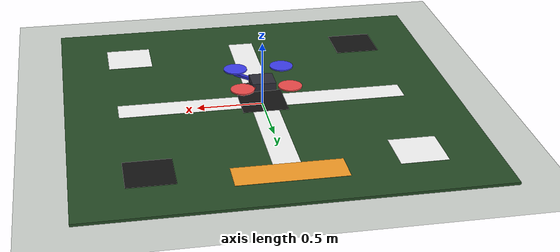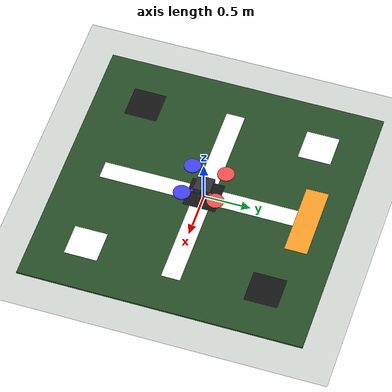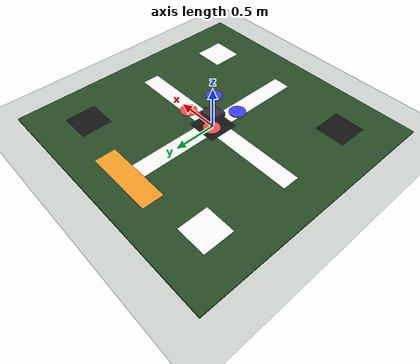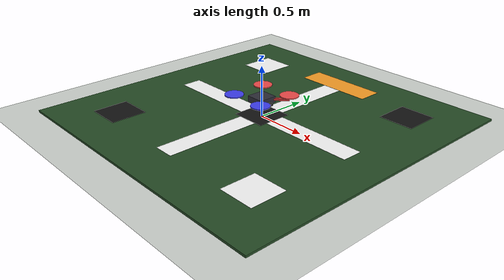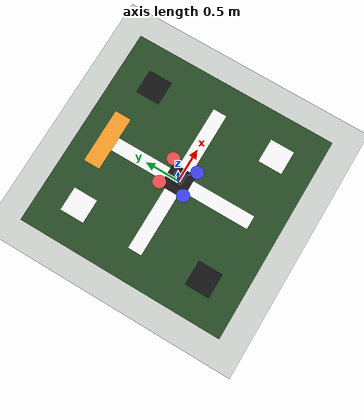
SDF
<?xml version="1.0"?>
<sdf version="1.9">
  <world name="empty_world">
    <gravity>0 0 -9.81</gravity>
    <magnetic_field>6.0e-06 2.3e-05 -4.2e-05</magnetic_field>
    <atmosphere type="adiabatic"/>

    <physics name="physics" type="ode">
      <max_step_size>0.004</max_step_size>
      <real_time_factor>1.0</real_time_factor>
      <real_time_update_rate>250</real_time_update_rate>
    </physics>

    <plugin filename="gz-sim8-physics-system" name="gz::sim::systems::Physics"/>
    <plugin filename="gz-sim8-user-commands-system" name="gz::sim::systems::UserCommands"/>
    <plugin filename="gz-sim8-scene-broadcaster-system" name="gz::sim::systems::SceneBroadcaster"/>
    <plugin filename="gz-sim8-sensors-system" name="gz::sim::systems::Sensors">
      <render_engine>ogre2</render_engine>
    </plugin>
    <plugin filename="gz-sim8-imu-system" name="gz::sim::systems::Imu"/>
    <plugin filename="gz-sim8-air-pressure-system" name="gz::sim::systems::AirPressure"/>

    <scene>
      <ambient>0.7 0.7 0.7 1</ambient>
      <background>0.9 0.9 0.95 1</background>
      <shadows>false</shadows>
      <grid>true</grid>
    </scene>

    <light type="directional" name="sun">
      <cast_shadows>false</cast_shadows>
      <pose>0 0 10 0 0 0</pose>
      <diffuse>1 1 1 1</diffuse>
      <specular>0.2 0.2 0.2 1</specular>
      <direction>-0.4 0.2 -1</direction>
    </light>

    <model name="ground_plane">
      <static>true</static>
      <link name="link">
        <collision name="collision">
          <geometry>
            <plane>
              <normal>0 0 1</normal>
              <size>100 100</size>
            </plane>
          </geometry>
        </collision>
        <visual name="visual">
          <geometry>
            <plane>
              <normal>0 0 1</normal>
              <size>100 100</size>
            </plane>
          </geometry>
          <material>
            <ambient>0.78 0.8 0.78 1</ambient>
            <diffuse>0.82 0.84 0.82 1</diffuse>
          </material>
        </visual>
      </link>
    </model>

    <model name="landing_pad">
      <static>true</static>
      <link name="link">
        <collision name="collision">
          <geometry>
            <box>
              <size>3 3 0.02</size>
            </box>
          </geometry>
        </collision>
        <visual name="visual">
          <geometry>
            <box>
              <size>3 3 0.02</size>
            </box>
          </geometry>
          <material>
            <ambient>0.12 0.2 0.12 1</ambient>
            <diffuse>0.15 0.3 0.15 1</diffuse>
          </material>
        </visual>
        <visual name="center_cross_long">
          <pose>0 0 0.011 0 0 0</pose>
          <geometry>
            <box>
              <size>2.2 0.2 0.002</size>
            </box>
          </geometry>
          <material>
            <ambient>0.96 0.96 0.96 1</ambient>
            <diffuse>0.99 0.99 0.99 1</diffuse>
          </material>
        </visual>
        <visual name="center_cross_wide">
          <pose>0 0 0.011 0 0 0</pose>
          <geometry>
            <box>
              <size>0.2 2.2 0.002</size>
            </box>
          </geometry>
          <material>
            <ambient>0.96 0.96 0.96 1</ambient>
            <diffuse>0.99 0.99 0.99 1</diffuse>
          </material>
        </visual>
        <visual name="center_marker">
          <pose>0 0 0.012 0 0 0</pose>
          <geometry>
            <box>
              <size>0.35 0.35 0.002</size>
            </box>
          </geometry>
          <material>
            <ambient>0.06 0.06 0.06 1</ambient>
            <diffuse>0.08 0.08 0.08 1</diffuse>
          </material>
        </visual>
        <visual name="north_marker">
          <pose>0 1.1 0.012 0 0 0</pose>
          <geometry>
            <box>
              <size>0.8 0.24 0.002</size>
            </box>
          </geometry>
          <material>
            <ambient>0.95 0.55 0.12 1</ambient>
            <diffuse>0.98 0.62 0.15 1</diffuse>
          </material>
        </visual>
        <visual name="southwest_marker">
          <pose>-0.95 -0.95 0.012 0 0 0</pose>
          <geometry>
            <box>
              <size>0.35 0.35 0.002</size>
            </box>
          </geometry>
          <material>
            <ambient>0.06 0.06 0.06 1</ambient>
            <diffuse>0.08 0.08 0.08 1</diffuse>
          </material>
        </visual>
        <visual name="southeast_marker">
          <pose>0.95 -0.95 0.012 0 0 0</pose>
          <geometry>
            <box>
              <size>0.35 0.35 0.002</size>
            </box>
          </geometry>
          <material>
            <ambient>0.96 0.96 0.96 1</ambient>
            <diffuse>0.99 0.99 0.99 1</diffuse>
          </material>
        </visual>
        <visual name="northwest_marker">
          <pose>-0.95 0.95 0.012 0 0 0</pose>
          <geometry>
            <box>
              <size>0.35 0.35 0.002</size>
            </box>
          </geometry>
          <material>
            <ambient>0.96 0.96 0.96 1</ambient>
            <diffuse>0.99 0.99 0.99 1</diffuse>
          </material>
        </visual>
        <visual name="northeast_marker">
          <pose>0.95 0.95 0.012 0 0 0</pose>
          <geometry>
            <box>
              <size>0.35 0.35 0.002</size>
            </box>
          </geometry>
          <material>
            <ambient>0.06 0.06 0.06 1</ambient>
            <diffuse>0.08 0.08 0.08 1</diffuse>
          </material>
        </visual>
      </link>
      <pose>0 0 0.01 0 0 0</pose>
    </model>

    <include>
      <uri>model://quadcopter</uri>
      <name>quadcopter</name>
      <pose>0 0 0.18 0 0 0</pose>
    </include>
  </world>
</sdf>

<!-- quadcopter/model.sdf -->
<sdf version="1.9">
  <model name="quadcopter">
    <static>false</static>
    <pose>0 0 0.18 0 0 0</pose>

    <link name="base_link">
      <pose>0 0 0 0 0 0</pose>
      <inertial>
        <mass>1.0</mass>
        <inertia>
          <ixx>0.021</ixx>
          <iyy>0.021</iyy>
          <izz>0.038</izz>
          <ixy>0.0</ixy>
          <ixz>0.0</ixz>
          <iyz>0.0</iyz>
        </inertia>
      </inertial>

      <collision name="body_collision">
        <geometry>
          <box>
            <size>0.18 0.18 0.06</size>
          </box>
        </geometry>
      </collision>

      <visual name="body_visual">
        <geometry>
          <box>
            <size>0.18 0.18 0.06</size>
          </box>
        </geometry>
        <material>
          <ambient>0.15 0.15 0.18 1</ambient>
          <diffuse>0.18 0.18 0.22 1</diffuse>
          <specular>0.05 0.05 0.05 1</specular>
        </material>
      </visual>

      <visual name="arm_front_left">
        <pose>0.09 0.09 0 0 0 0.785398</pose>
        <geometry>
          <box>
            <size>0.26 0.03 0.02</size>
          </box>
        </geometry>
        <material>
          <ambient>0.7 0.15 0.15 1</ambient>
          <diffuse>0.8 0.2 0.2 1</diffuse>
        </material>
      </visual>

      <visual name="arm_front_right">
        <pose>0.09 -0.09 0 0 0 -0.785398</pose>
        <geometry>
          <box>
            <size>0.26 0.03 0.02</size>
          </box>
        </geometry>
        <material>
          <ambient>0.15 0.15 0.7 1</ambient>
          <diffuse>0.2 0.2 0.85 1</diffuse>
        </material>
      </visual>

      <visual name="camera_mount_visual">
        <pose>0.085 0 -0.01 0 0 0</pose>
        <geometry>
          <box>
            <size>0.05 0.04 0.01</size>
          </box>
        </geometry>
        <material>
          <ambient>0.08 0.08 0.08 1</ambient>
          <diffuse>0.12 0.12 0.12 1</diffuse>
        </material>
      </visual>

      <visual name="camera_body_visual">
        <pose>0.12 0 -0.015 0 0 0</pose>
        <geometry>
          <box>
            <size>0.04 0.03 0.025</size>
          </box>
        </geometry>
        <material>
          <ambient>0.04 0.04 0.04 1</ambient>
          <diffuse>0.08 0.08 0.08 1</diffuse>
        </material>
      </visual>

      <visual name="down_camera_mount_visual">
        <pose>0 0 -0.026 0 0 0</pose>
        <geometry>
          <box>
            <size>0.045 0.045 0.01</size>
          </box>
        </geometry>
        <material>
          <ambient>0.05 0.05 0.05 1</ambient>
          <diffuse>0.09 0.09 0.09 1</diffuse>
        </material>
      </visual>

      <sensor name="imu_sensor" type="imu">
        <always_on>true</always_on>
        <update_rate>250</update_rate>
        <visualize>false</visualize>
        <imu>
          <enable_orientation>false</enable_orientation>
          <angular_velocity>
            <x>
              <noise type="gaussian">
                <mean>0.0</mean>
                <stddev>0.003</stddev>
              </noise>
            </x>
            <y>
              <noise type="gaussian">
                <mean>0.0</mean>
                <stddev>0.003</stddev>
              </noise>
            </y>
            <z>
              <noise type="gaussian">
                <mean>0.0</mean>
                <stddev>0.003</stddev>
              </noise>
            </z>
          </angular_velocity>
          <linear_acceleration>
            <x>
              <noise type="gaussian">
                <mean>0.0</mean>
                <stddev>0.05</stddev>
              </noise>
            </x>
            <y>
              <noise type="gaussian">
                <mean>0.0</mean>
                <stddev>0.05</stddev>
              </noise>
            </y>
            <z>
              <noise type="gaussian">
                <mean>0.0</mean>
                <stddev>0.05</stddev>
              </noise>
            </z>
          </linear_acceleration>
        </imu>
      </sensor>

      <sensor name="barometer" type="air_pressure">
        <always_on>true</always_on>
        <update_rate>30</update_rate>
        <visualize>false</visualize>
        <air_pressure>
          <reference_altitude>0.0</reference_altitude>
          <pressure>
            <noise type="gaussian">
              <mean>0.0</mean>
              <stddev>1.5</stddev>
            </noise>
          </pressure>
        </air_pressure>
      </sensor>

      <sensor name="front_camera" type="camera">
        <pose>0.12 0 -0.015 0 0.15 0</pose>
        <always_on>true</always_on>
        <update_rate>30</update_rate>
        <visualize>false</visualize>
        <camera name="front_camera">
          <horizontal_fov>1.3962634</horizontal_fov>
          <lens>
            <intrinsics>
              <fx>381.36112213134766</fx>
              <fy>381.361141204834</fy>
              <cx>320.0</cx>
              <cy>240.0</cy>
              <s>0.0</s>
            </intrinsics>
          </lens>
          <distortion>
            <k1>0.0</k1>
            <k2>0.0</k2>
            <k3>0.0</k3>
            <p1>0.0</p1>
            <p2>0.0</p2>
            <center>0.5 0.5</center>
          </distortion>
          <image>
            <width>640</width>
            <height>480</height>
            <format>R8G8B8</format>
          </image>
          <clip>
            <near>0.08</near>
            <far>50.0</far>
          </clip>
          <noise>
            <type>gaussian</type>
            <mean>0.0</mean>
            <stddev>0.006</stddev>
          </noise>
        </camera>
      </sensor>

      <sensor name="down_camera" type="camera">
        <pose>0 0 -0.03 0 1.57079632679 0</pose>
        <always_on>true</always_on>
        <update_rate>45</update_rate>
        <visualize>false</visualize>
        <camera name="down_camera">
          <horizontal_fov>1.22173048</horizontal_fov>
          <lens>
            <intrinsics>
              <fx>415.69219381653056</fx>
              <fy>415.69219381653056</fy>
              <cx>320.0</cx>
              <cy>240.0</cy>
              <s>0.0</s>
            </intrinsics>
          </lens>
          <distortion>
            <k1>0.0</k1>
            <k2>0.0</k2>
            <k3>0.0</k3>
            <p1>0.0</p1>
            <p2>0.0</p2>
            <center>0.5 0.5</center>
          </distortion>
          <image>
            <width>640</width>
            <height>480</height>
            <format>R8G8B8</format>
          </image>
          <clip>
            <near>0.05</near>
            <far>25.0</far>
          </clip>
          <noise>
            <type>gaussian</type>
            <mean>0.0</mean>
            <stddev>0.004</stddev>
          </noise>
        </camera>
      </sensor>
    </link>

    <link name="rotor_front_left">
      <pose>0.18 0.18 0.04 0 0 0</pose>
      <inertial>
        <mass>0.02</mass>
        <inertia>
          <ixx>0.00002</ixx>
          <iyy>0.00002</iyy>
          <izz>0.00004</izz>
          <ixy>0.0</ixy>
          <ixz>0.0</ixz>
          <iyz>0.0</iyz>
        </inertia>
      </inertial>
      <collision name="collision">
        <geometry>
          <cylinder>
            <radius>0.09</radius>
            <length>0.01</length>
          </cylinder>
        </geometry>
      </collision>
      <visual name="visual">
        <geometry>
          <cylinder>
            <radius>0.09</radius>
            <length>0.01</length>
          </cylinder>
        </geometry>
        <material>
          <ambient>0.85 0.25 0.25 1</ambient>
          <diffuse>0.95 0.3 0.3 1</diffuse>
        </material>
      </visual>
    </link>

    <joint name="rotor_front_left_joint" type="revolute">
      <parent>base_link</parent>
      <child>rotor_front_left</child>
      <axis>
        <xyz>0 0 1</xyz>
        <limit>
          <lower>-1e16</lower>
          <upper>1e16</upper>
        </limit>
      </axis>
    </joint>

    <link name="rotor_front_right">
      <pose>0.18 -0.18 0.04 0 0 0</pose>
      <inertial>
        <mass>0.02</mass>
        <inertia>
          <ixx>0.00002</ixx>
          <iyy>0.00002</iyy>
          <izz>0.00004</izz>
          <ixy>0.0</ixy>
          <ixz>0.0</ixz>
          <iyz>0.0</iyz>
        </inertia>
      </inertial>
      <collision name="collision">
        <geometry>
          <cylinder>
            <radius>0.09</radius>
            <length>0.01</length>
          </cylinder>
        </geometry>
      </collision>
      <visual name="visual">
        <geometry>
          <cylinder>
            <radius>0.09</radius>
            <length>0.01</length>
          </cylinder>
        </geometry>
        <material>
          <ambient>0.2 0.2 0.85 1</ambient>
          <diffuse>0.25 0.25 0.95 1</diffuse>
        </material>
      </visual>
    </link>

    <joint name="rotor_front_right_joint" type="revolute">
      <parent>base_link</parent>
      <child>rotor_front_right</child>
      <axis>
        <xyz>0 0 1</xyz>
        <limit>
          <lower>-1e16</lower>
          <upper>1e16</upper>
        </limit>
      </axis>
    </joint>

    <link name="rotor_rear_right">
      <pose>-0.18 -0.18 0.04 0 0 0</pose>
      <inertial>
        <mass>0.02</mass>
        <inertia>
          <ixx>0.00002</ixx>
          <iyy>0.00002</iyy>
          <izz>0.00004</izz>
          <ixy>0.0</ixy>
          <ixz>0.0</ixz>
          <iyz>0.0</iyz>
        </inertia>
      </inertial>
      <collision name="collision">
        <geometry>
          <cylinder>
            <radius>0.09</radius>
            <length>0.01</length>
          </cylinder>
        </geometry>
      </collision>
      <visual name="visual">
        <geometry>
          <cylinder>
            <radius>0.09</radius>
            <length>0.01</length>
          </cylinder>
        </geometry>
        <material>
          <ambient>0.2 0.2 0.85 1</ambient>
          <diffuse>0.25 0.25 0.95 1</diffuse>
        </material>
      </visual>
    </link>

    <joint name="rotor_rear_right_joint" type="revolute">
      <parent>base_link</parent>
      <child>rotor_rear_right</child>
      <axis>
        <xyz>0 0 1</xyz>
        <limit>
          <lower>-1e16</lower>
          <upper>1e16</upper>
        </limit>
      </axis>
    </joint>

    <link name="rotor_rear_left">
      <pose>-0.18 0.18 0.04 0 0 0</pose>
      <inertial>
        <mass>0.02</mass>
        <inertia>
          <ixx>0.00002</ixx>
          <iyy>0.00002</iyy>
          <izz>0.00004</izz>
          <ixy>0.0</ixy>
          <ixz>0.0</ixz>
          <iyz>0.0</iyz>
        </inertia>
      </inertial>
      <collision name="collision">
        <geometry>
          <cylinder>
            <radius>0.09</radius>
            <length>0.01</length>
          </cylinder>
        </geometry>
      </collision>
      <visual name="visual">
        <geometry>
          <cylinder>
            <radius>0.09</radius>
            <length>0.01</length>
          </cylinder>
        </geometry>
        <material>
          <ambient>0.85 0.25 0.25 1</ambient>
          <diffuse>0.95 0.3 0.3 1</diffuse>
        </material>
      </visual>
    </link>

    <joint name="rotor_rear_left_joint" type="revolute">
      <parent>base_link</parent>
      <child>rotor_rear_left</child>
      <axis>
        <xyz>0 0 1</xyz>
        <limit>
          <lower>-1e16</lower>
          <upper>1e16</upper>
        </limit>
      </axis>
    </joint>

    <plugin filename="gz-sim8-multicopter-motor-model-system" name="gz::sim::systems::MulticopterMotorModel">
      <robotNamespace>quadcopter</robotNamespace>
      <jointName>rotor_front_left_joint</jointName>
      <linkName>rotor_front_left</linkName>
      <turningDirection>ccw</turningDirection>
      <timeConstantUp>0.0125</timeConstantUp>
      <timeConstantDown>0.025</timeConstantDown>
      <maxRotVelocity>900.0</maxRotVelocity>
      <motorConstant>8.54858e-06</motorConstant>
      <momentConstant>0.016</momentConstant>
      <commandSubTopic>command/motor_speed</commandSubTopic>
      <actuator_number>0</actuator_number>
      <motorNumber>0</motorNumber>
      <rotorDragCoefficient>8.06428e-04</rotorDragCoefficient>
      <rollingMomentCoefficient>1.0e-06</rollingMomentCoefficient>
      <rotorVelocitySlowdownSim>10.0</rotorVelocitySlowdownSim>
      <motorType>velocity</motorType>
    </plugin>

    <plugin filename="gz-sim8-multicopter-motor-model-system" name="gz::sim::systems::MulticopterMotorModel">
      <robotNamespace>quadcopter</robotNamespace>
      <jointName>rotor_front_right_joint</jointName>
      <linkName>rotor_front_right</linkName>
      <turningDirection>cw</turningDirection>
      <timeConstantUp>0.0125</timeConstantUp>
      <timeConstantDown>0.025</timeConstantDown>
      <maxRotVelocity>900.0</maxRotVelocity>
      <motorConstant>8.54858e-06</motorConstant>
      <momentConstant>0.016</momentConstant>
      <commandSubTopic>command/motor_speed</commandSubTopic>
      <actuator_number>1</actuator_number>
      <motorNumber>1</motorNumber>
      <rotorDragCoefficient>8.06428e-04</rotorDragCoefficient>
      <rollingMomentCoefficient>1.0e-06</rollingMomentCoefficient>
      <rotorVelocitySlowdownSim>10.0</rotorVelocitySlowdownSim>
      <motorType>velocity</motorType>
    </plugin>

    <plugin filename="gz-sim8-multicopter-motor-model-system" name="gz::sim::systems::MulticopterMotorModel">
      <robotNamespace>quadcopter</robotNamespace>
      <jointName>rotor_rear_right_joint</jointName>
      <linkName>rotor_rear_right</linkName>
      <turningDirection>ccw</turningDirection>
      <timeConstantUp>0.0125</timeConstantUp>
      <timeConstantDown>0.025</timeConstantDown>
      <maxRotVelocity>900.0</maxRotVelocity>
      <motorConstant>8.54858e-06</motorConstant>
      <momentConstant>0.016</momentConstant>
      <commandSubTopic>command/motor_speed</commandSubTopic>
      <actuator_number>2</actuator_number>
      <motorNumber>2</motorNumber>
      <rotorDragCoefficient>8.06428e-04</rotorDragCoefficient>
      <rollingMomentCoefficient>1.0e-06</rollingMomentCoefficient>
      <rotorVelocitySlowdownSim>10.0</rotorVelocitySlowdownSim>
      <motorType>velocity</motorType>
    </plugin>

    <plugin filename="gz-sim8-multicopter-motor-model-system" name="gz::sim::systems::MulticopterMotorModel">
      <robotNamespace>quadcopter</robotNamespace>
      <jointName>rotor_rear_left_joint</jointName>
      <linkName>rotor_rear_left</linkName>
      <turningDirection>cw</turningDirection>
      <timeConstantUp>0.0125</timeConstantUp>
      <timeConstantDown>0.025</timeConstantDown>
      <maxRotVelocity>900.0</maxRotVelocity>
      <motorConstant>8.54858e-06</motorConstant>
      <momentConstant>0.016</momentConstant>
      <commandSubTopic>command/motor_speed</commandSubTopic>
      <actuator_number>3</actuator_number>
      <motorNumber>3</motorNumber>
      <rotorDragCoefficient>8.06428e-04</rotorDragCoefficient>
      <rollingMomentCoefficient>1.0e-06</rollingMomentCoefficient>
      <rotorVelocitySlowdownSim>10.0</rotorVelocitySlowdownSim>
      <motorType>velocity</motorType>
    </plugin>
  </model>
</sdf>
